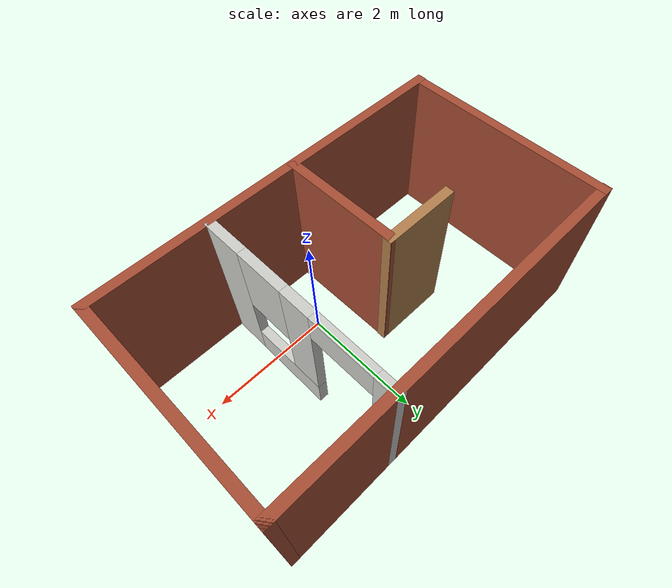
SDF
<?xml version='1.0'?>
<sdf version='1.7'>
  <model name='Room'>
    <pose>-0.32 0.695 0 0 -0 0</pose>
    <link name='Wall_0'>
      <collision name='Wall_0_Collision'>
        <geometry>
          <box>
            <size>6.11 0.15 2.5</size>
          </box>
        </geometry>
        <pose>0 0 1.25 0 -0 0</pose>
      </collision>
      <visual name='Wall_0_Visual'>
        <pose>0 0 1.25 0 -0 0</pose>
        <geometry>
          <box>
            <size>6.11 0.15 2.5</size>
          </box>
        </geometry>
        <material>
          <script>
            <uri>file://media/materials/scripts/gazebo.material</uri>
            <name>Gazebo/Bricks</name>
          </script>
          <ambient>1 1 1 1</ambient>
        </material>
        <meta>
          <layer>0</layer>
        </meta>
      </visual>
      <pose>-0 -1.675 0 0 -0 0</pose>
    </link>
    <link name='Wall_10'>
      <collision name='Wall_10_Collision'>
        <geometry>
          <box>
            <size>1.25 0.15 2.5</size>
          </box>
        </geometry>
        <pose>0 0 1.25 0 -0 0</pose>
      </collision>
      <visual name='Wall_10_Visual'>
        <pose>0 0 1.25 0 -0 0</pose>
        <geometry>
          <box>
            <size>1.25 0.15 2.5</size>
          </box>
        </geometry>
        <material>
          <script>
            <uri>file://media/materials/scripts/gazebo.material</uri>
            <name>Gazebo/Wood</name>
          </script>
          <ambient>1 1 1 1</ambient>
        </material>
        <meta>
          <layer>0</layer>
        </meta>
      </visual>
      <pose>-0.88 0.195 0 0 -0 3.14159</pose>
    </link>
    <link name='Wall_3'>
      <collision name='Wall_3_Collision'>
        <geometry>
          <box>
            <size>3.5 0.15 2.5</size>
          </box>
        </geometry>
        <pose>0 0 1.25 0 -0 0</pose>
      </collision>
      <visual name='Wall_3_Visual'>
        <pose>0 0 1.25 0 -0 0</pose>
        <geometry>
          <box>
            <size>3.5 0.15 2.5</size>
          </box>
        </geometry>
        <material>
          <script>
            <uri>file://media/materials/scripts/gazebo.material</uri>
            <name>Gazebo/Bricks</name>
          </script>
          <ambient>1 1 1 1</ambient>
        </material>
        <meta>
          <layer>0</layer>
        </meta>
      </visual>
      <pose>2.98 0 0 0 -0 1.5708</pose>
    </link>
    <link name='Wall_4'>
      <collision name='Wall_4_Collision'>
        <geometry>
          <box>
            <size>6.11 0.15 2.5</size>
          </box>
        </geometry>
        <pose>0 0 1.25 0 -0 0</pose>
      </collision>
      <visual name='Wall_4_Visual'>
        <pose>0 0 1.25 0 -0 0</pose>
        <geometry>
          <box>
            <size>6.11 0.15 2.5</size>
          </box>
        </geometry>
        <material>
          <script>
            <uri>file://media/materials/scripts/gazebo.material</uri>
            <name>Gazebo/Bricks</name>
          </script>
          <ambient>1 1 1 1</ambient>
        </material>
        <meta>
          <layer>0</layer>
        </meta>
      </visual>
      <pose>-0 1.675 0 0 -0 3.14159</pose>
    </link>
    <link name='Wall_5'>
      <collision name='Wall_5_Collision'>
        <geometry>
          <box>
            <size>3.5 0.15 2.5</size>
          </box>
        </geometry>
        <pose>0 0 1.25 0 -0 0</pose>
      </collision>
      <visual name='Wall_5_Visual'>
        <pose>0 0 1.25 0 -0 0</pose>
        <geometry>
          <box>
            <size>3.5 0.15 2.5</size>
          </box>
        </geometry>
        <material>
          <script>
            <uri>file://media/materials/scripts/gazebo.material</uri>
            <name>Gazebo/Bricks</name>
          </script>
          <ambient>1 1 1 1</ambient>
        </material>
        <meta>
          <layer>0</layer>
        </meta>
      </visual>
      <pose>-2.97 0 0 0 -0 -1.5708</pose>
    </link>
    <link name='Wall_7'>
      <pose>1.14 0 0 0 -0 1.5708</pose>
      <visual name='Wall_7_Visual_0'>
        <pose>-1.3675 0 1.25 0 -0 0</pose>
        <geometry>
          <box>
            <size>0.765 0.15 2.5</size>
          </box>
        </geometry>
        <material>
          <script>
            <uri>file://media/materials/scripts/gazebo.material</uri>
            <name>Gazebo/CeilingTiled</name>
          </script>
          <ambient>1 1 1 1</ambient>
        </material>
        <meta>
          <layer>0</layer>
        </meta>
      </visual>
      <collision name='Wall_7_Collision_0'>
        <geometry>
          <box>
            <size>0.765 0.15 2.5</size>
          </box>
        </geometry>
        <pose>-1.3675 0 1.25 0 -0 0</pose>
      </collision>
      <visual name='Wall_7_Visual_1'>
        <pose>1.57 0 1.25 0 -0 0</pose>
        <geometry>
          <box>
            <size>0.36 0.15 2.5</size>
          </box>
        </geometry>
        <material>
          <script>
            <uri>file://media/materials/scripts/gazebo.material</uri>
            <name>Gazebo/CeilingTiled</name>
          </script>
          <ambient>1 1 1 1</ambient>
        </material>
        <meta>
          <layer>0</layer>
        </meta>
      </visual>
      <collision name='Wall_7_Collision_1'>
        <geometry>
          <box>
            <size>0.36 0.15 2.5</size>
          </box>
        </geometry>
        <pose>1.57 0 1.25 0 -0 0</pose>
      </collision>
      <visual name='Wall_7_Visual_2'>
        <pose>-0.3275 0 0.25 0 -0 0</pose>
        <geometry>
          <box>
            <size>1.315 0.15 0.5</size>
          </box>
        </geometry>
        <material>
          <script>
            <uri>file://media/materials/scripts/gazebo.material</uri>
            <name>Gazebo/CeilingTiled</name>
          </script>
          <ambient>1 1 1 1</ambient>
        </material>
        <meta>
          <layer>0</layer>
        </meta>
      </visual>
      <collision name='Wall_7_Collision_2'>
        <geometry>
          <box>
            <size>1.315 0.15 0.5</size>
          </box>
        </geometry>
        <pose>-0.3275 0 0.25 0 -0 0</pose>
      </collision>
      <visual name='Wall_7_Visual_3'>
        <pose>0.0725 0 1.5 0 -0 0</pose>
        <geometry>
          <box>
            <size>0.515 0.15 2</size>
          </box>
        </geometry>
        <material>
          <script>
            <uri>file://media/materials/scripts/gazebo.material</uri>
            <name>Gazebo/CeilingTiled</name>
          </script>
          <ambient>1 1 1 1</ambient>
        </material>
        <meta>
          <layer>0</layer>
        </meta>
      </visual>
      <collision name='Wall_7_Collision_3'>
        <geometry>
          <box>
            <size>0.515 0.15 2</size>
          </box>
        </geometry>
        <pose>0.0725 0 1.5 0 -0 0</pose>
      </collision>
      <visual name='Wall_7_Visual_4'>
        <pose>-0.585 0 1.9 0 -0 0</pose>
        <geometry>
          <box>
            <size>0.8 0.15 1.2</size>
          </box>
        </geometry>
        <material>
          <script>
            <uri>file://media/materials/scripts/gazebo.material</uri>
            <name>Gazebo/CeilingTiled</name>
          </script>
          <ambient>1 1 1 1</ambient>
        </material>
        <meta>
          <layer>0</layer>
        </meta>
      </visual>
      <collision name='Wall_7_Collision_4'>
        <geometry>
          <box>
            <size>0.8 0.15 1.2</size>
          </box>
        </geometry>
        <pose>-0.585 0 1.9 0 -0 0</pose>
      </collision>
      <visual name='Wall_7_Visual_5'>
        <pose>0.86 0 2.25 0 -0 0</pose>
        <geometry>
          <box>
            <size>1.06 0.15 0.5</size>
          </box>
        </geometry>
        <material>
          <script>
            <uri>file://media/materials/scripts/gazebo.material</uri>
            <name>Gazebo/CeilingTiled</name>
          </script>
          <ambient>1 1 1 1</ambient>
        </material>
        <meta>
          <layer>0</layer>
        </meta>
      </visual>
      <collision name='Wall_7_Collision_5'>
        <geometry>
          <box>
            <size>1.06 0.15 0.5</size>
          </box>
        </geometry>
        <pose>0.86 0 2.25 0 -0 0</pose>
      </collision>
    </link>
    <link name='Wall_9'>
      <collision name='Wall_9_Collision'>
        <geometry>
          <box>
            <size>1.99003 0.15 2.5</size>
          </box>
        </geometry>
        <pose>0 0 1.25 0 -0 0</pose>
      </collision>
      <visual name='Wall_9_Visual'>
        <pose>0 0 1.25 0 -0 0</pose>
        <geometry>
          <box>
            <size>1.99003 0.15 2.5</size>
          </box>
        </geometry>
        <material>
          <script>
            <uri>file://media/materials/scripts/gazebo.material</uri>
            <name>Gazebo/Bricks</name>
          </script>
          <ambient>1 1 1 1</ambient>
        </material>
        <meta>
          <layer>0</layer>
        </meta>
      </visual>
      <pose>-0.335 -0.725 0 0 -0 1.57623</pose>
    </link>
    <static>1</static>
  </model>
</sdf>
